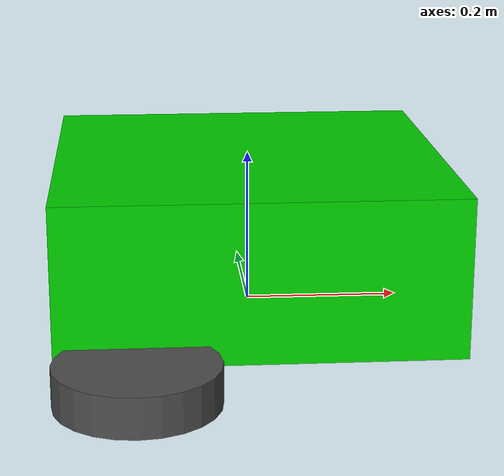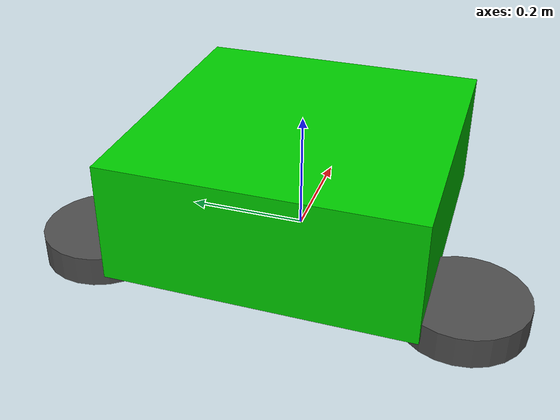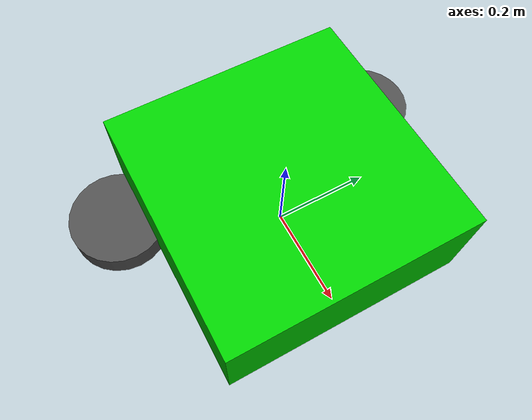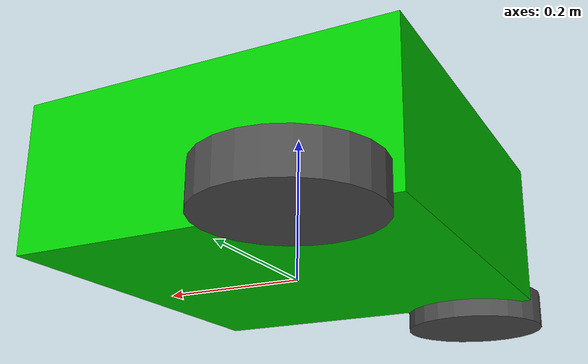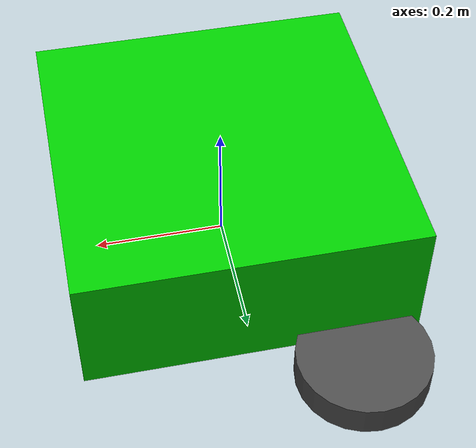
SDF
<?xml version="1.0" ?>
<sdf version="1.7">
  <model name="basic_robot_model">
    <link name="chassis">
      <pose>0 0 0.1 0 0 0</pose>
      <inertial>
        <mass>5.0</mass>
        <inertia>
          <ixx>0.1</ixx>
          <ixy>0.0</ixy>
          <ixz>0.0</ixz>
          <iyy>0.1</iyy>
          <iyz>0.0</iyz>
          <izz>0.1</izz>
        </inertia>
      </inertial>
      <collision name="collision">
        <geometry>
          <box>
            <size>0.5 0.5 0.2</size>
          </box>
        </geometry>
      </collision>
      <visual name="visual">
        <geometry>
          <box>
            <size>0.5 0.5 0.2</size>
          </box>
        </geometry>
        <material>
          <ambient>0.0 0.8 0.0 1</ambient>
          <diffuse>0.0 0.8 0.0 1</diffuse>
        </material>
      </visual>
    </link>

    <link name="left_wheel">
      <pose>-0.15 0.3 0 0 0 0</pose>
      <inertial>
        <mass>0.5</mass>
        <inertia>
          <ixx>0.001</ixx>
          <ixy>0.0</ixy>
          <ixz>0.0</ixz>
          <iyy>0.001</iyy>
          <iyz>0.0</iyz>
          <izz>0.001</izz>
        </inertia>
      </inertial>
      <collision name="collision">
        <geometry>
          <cylinder>
            <radius>0.1</radius>
            <length>0.05</length>
          </cylinder>
        </geometry>
      </collision>
      <visual name="visual">
        <geometry>
          <cylinder>
            <radius>0.1</radius>
            <length>0.05</length>
          </cylinder>
        </geometry>
        <material>
          <ambient>0.3 0.3 0.3 1</ambient>
          <diffuse>0.3 0.3 0.3 1</diffuse>
        </material>
      </visual>
    </link>

    <link name="right_wheel">
      <pose>-0.15 -0.3 0 0 0 0</pose>
      <inertial>
        <mass>0.5</mass>
        <inertia>
          <ixx>0.001</ixx>
          <ixy>0.0</ixy>
          <ixz>0.0</ixz>
          <iyy>0.001</iyy>
          <iyz>0.0</iyz>
          <izz>0.001</izz>
        </inertia>
      </inertial>
      <collision name="collision">
        <geometry>
          <cylinder>
            <radius>0.1</radius>
            <length>0.05</length>
          </cylinder>
        </geometry>
      </collision>
      <visual name="visual">
        <geometry>
          <cylinder>
            <radius>0.1</radius>
            <length>0.05</length>
          </cylinder>
        </geometry>
        <material>
          <ambient>0.3 0.3 0.3 1</ambient>
          <diffuse>0.3 0.3 0.3 1</diffuse>
        </material>
      </visual>
    </link>

    <joint name="left_wheel_joint" type="continuous">
      <parent>chassis</parent>
      <child>left_wheel</child>
      <axis>
        <xyz>0 0 1</xyz>
      </axis>
    </joint>

    <joint name="right_wheel_joint" type="continuous">
      <parent>chassis</parent>
      <child>right_wheel</child>
      <axis>
        <xyz>0 0 1</xyz>
      </axis>
    </joint>

    <!-- Simple differential drive plugin -->
    <plugin name="diff_drive" filename="libgazebo_ros_diff_drive.so">
      <left_joint>left_wheel_joint</left_joint>
      <right_joint>right_wheel_joint</right_joint>
      <wheel_separation>0.6</wheel_separation>
      <wheel_diameter>0.2</wheel_diameter>
      <max_wheel_torque>20</max_wheel_torque>
      <max_wheel_acceleration>1.0</max_wheel_acceleration>
      <command_topic>cmd_vel</command_topic>
      <odometry_topic>odom</odometry_topic>
      <odometry_frame>odom</odometry_frame>
      <robot_base_frame>chassis</robot_base_frame>
      <publish_odom>true</publish_odom>
      <publish_wheel_tf>true</publish_wheel_tf>
      <publish_wheel_joint_state>true</publish_wheel_joint_state>
      <ros>
        <namespace>/basic_robot</namespace>
      </ros>
    </plugin>
  </model>
</sdf>
